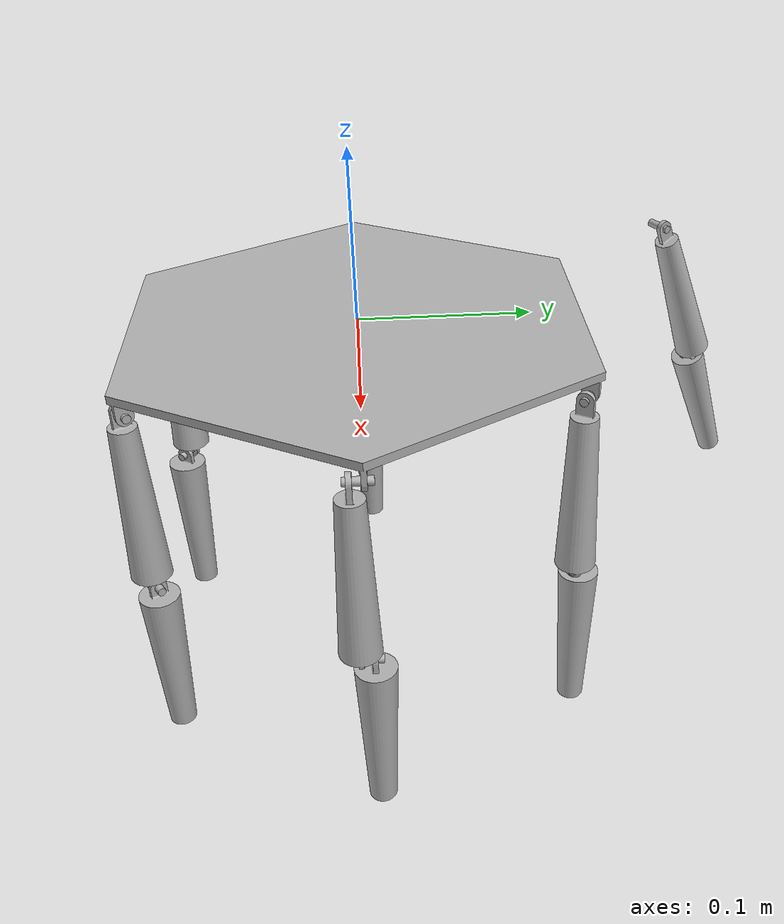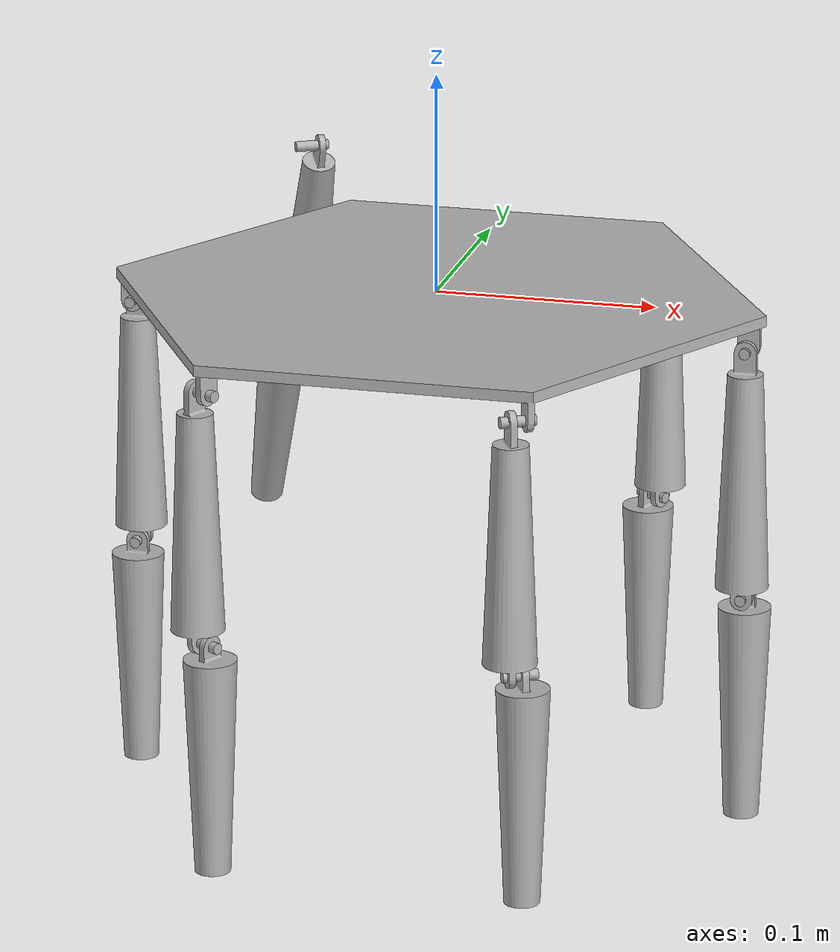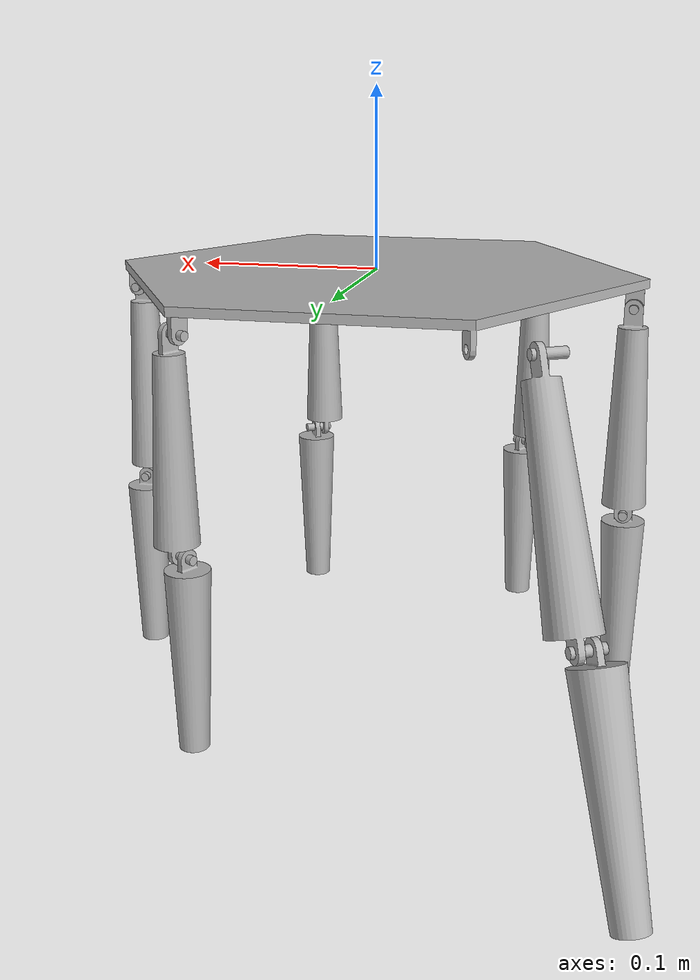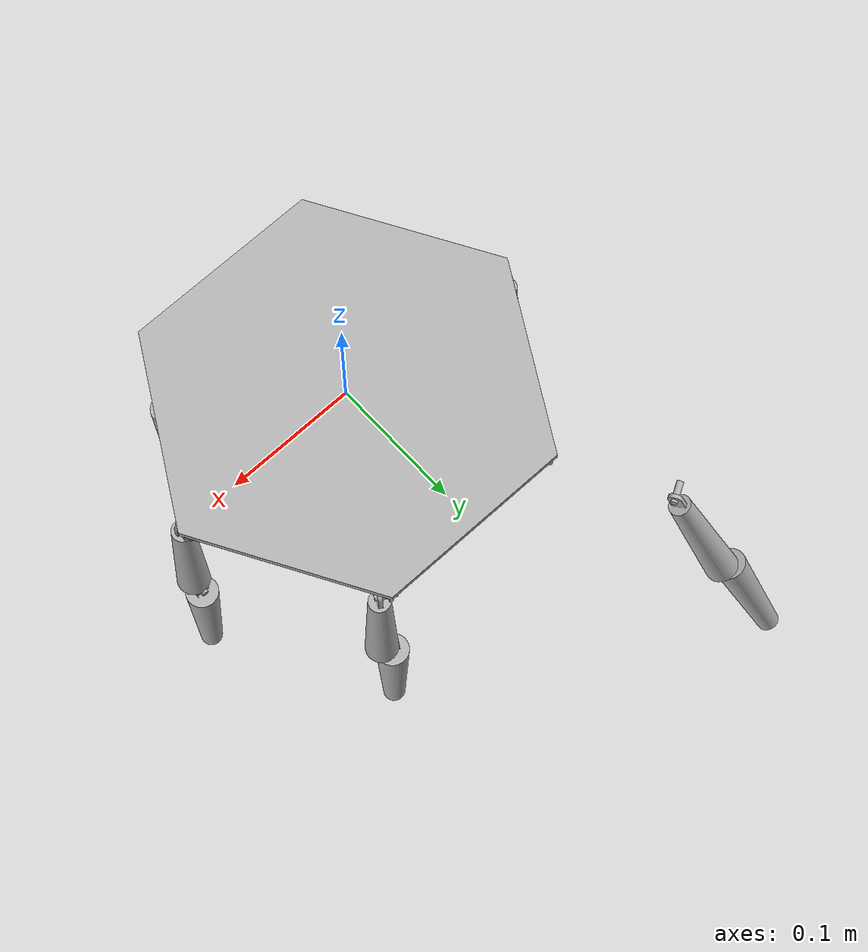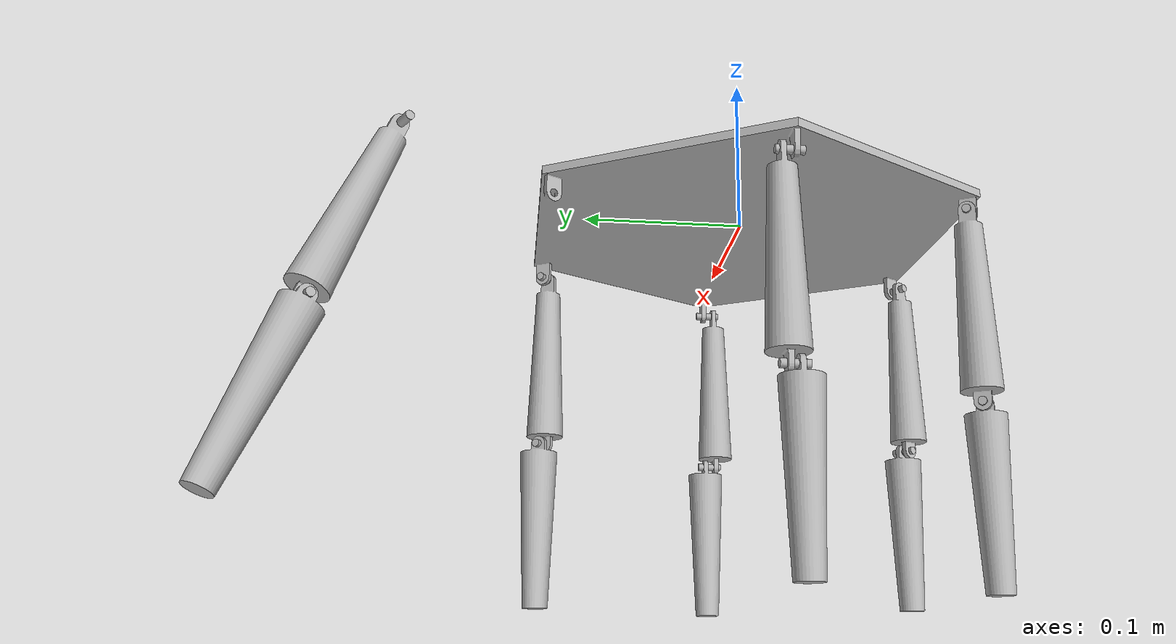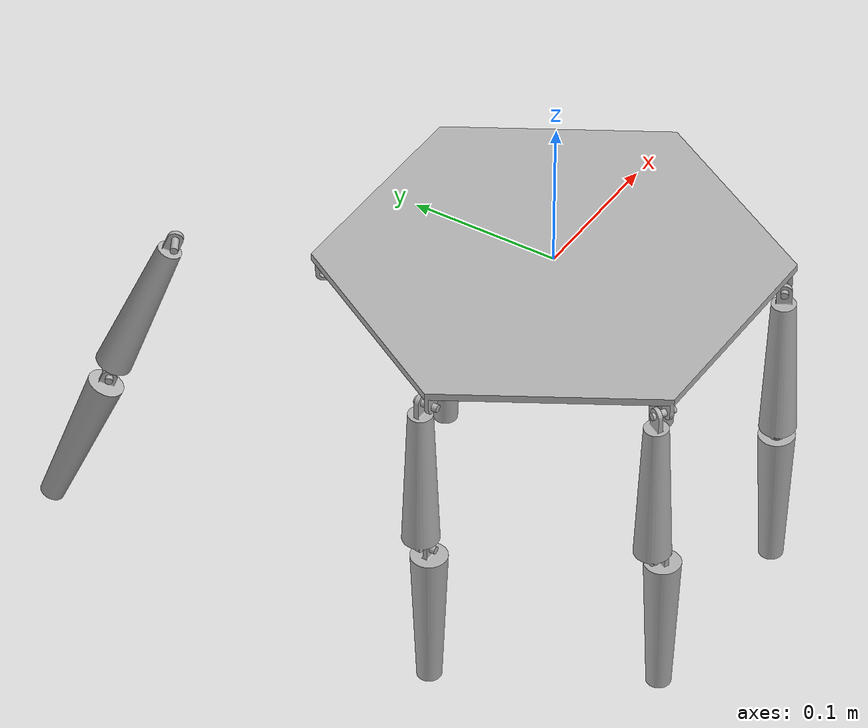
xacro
<?xml version="1.0" ?>
<robot name="hexapod1" xmlns:xacro="http://www.ros.org/wiki/xacro">

<xacro:include filename="$(find hexapod1_description)/urdf/materials.xacro" />
<xacro:include filename="$(find hexapod1_description)/urdf/hexapod1.trans" />
<xacro:include filename="$(find hexapod1_description)/urdf/hexapod1.gazebo" />
<link name="base_link">
  <inertial>
    <origin rpy="0 0 0" xyz="-3.0886578550290464e-17 -9.781969305119851e-17 0.23743381846397166"/>
    <mass value="2.3115326280936817"/>
    <inertia ixx="0.010935" ixy="-0.0" ixz="0.0" iyy="0.010935" iyz="-0.0" izz="0.021858"/>
  </inertial>
  <visual>
    <origin rpy="0 0 0" xyz="0 0 0"/>
    <geometry>
      <mesh filename="package://hexapod1_description/meshes/base_link.stl" scale="0.001 0.001 0.001"/>
    </geometry>
    <material name="silver"/>
  </visual>
  <collision>
    <origin rpy="0 0 0" xyz="0 0 0"/>
    <geometry>
      <mesh filename="package://hexapod1_description/meshes/base_link.stl" scale="0.001 0.001 0.001"/>
    </geometry>
  </collision>
</link>

<link name="lowerleg1_1">
  <inertial>
    <origin rpy="0 0 0" xyz="-0.0012985798550618766 0.0007502320287496311 -0.04902378284752565"/>
    <mass value="0.25197878483643155"/>
    <inertia ixx="0.000211" ixy="-0.0" ixz="0.0" iyy="0.000211" iyz="0.0" izz="1.3e-05"/>
  </inertial>
  <visual>
    <origin rpy="0 0 0" xyz="0.069944 0.124146 -0.109"/>
    <geometry>
      <mesh filename="package://hexapod1_description/meshes/lowerleg1_1.stl" scale="0.001 0.001 0.001"/>
    </geometry>
    <material name="silver"/>
  </visual>
  <collision>
    <origin rpy="0 0 0" xyz="0.069944 0.124146 -0.109"/>
    <geometry>
      <mesh filename="package://hexapod1_description/meshes/lowerleg1_1.stl" scale="0.001 0.001 0.001"/>
    </geometry>
  </collision>
</link>

<link name="kneepin1_1">
  <inertial>
    <origin rpy="0 0 0" xyz="3.4393371566021624e-07 2.3202897624086116e-07 -5.304813255335716e-09"/>
    <mass value="0.002466150233068093"/>
    <inertia ixx="0.0" ixy="0.0" ixz="0.0" iyy="0.0" iyz="-0.0" izz="0.0"/>
  </inertial>
  <visual>
    <origin rpy="0 0 0" xyz="0.073841 0.121896 -0.109"/>
    <geometry>
      <mesh filename="package://hexapod1_description/meshes/kneepin1_1.stl" scale="0.001 0.001 0.001"/>
    </geometry>
    <material name="silver"/>
  </visual>
  <collision>
    <origin rpy="0 0 0" xyz="0.073841 0.121896 -0.109"/>
    <geometry>
      <mesh filename="package://hexapod1_description/meshes/kneepin1_1.stl" scale="0.001 0.001 0.001"/>
    </geometry>
  </collision>
</link>

<link name="upperleg1_1">
  <inertial>
    <origin rpy="0 0 0" xyz="-0.0012987703854457772 0.0007502320252844585 -0.06626668072618791"/>
    <mass value="0.25482988143393986"/>
    <inertia ixx="0.000223" ixy="-0.0" ixz="0.0" iyy="0.000223" iyz="0.0" izz="1.3e-05"/>
  </inertial>
  <visual>
    <origin rpy="0 0 0" xyz="0.076439 0.120396 -0.225"/>
    <geometry>
      <mesh filename="package://hexapod1_description/meshes/upperleg1_1.stl" scale="0.001 0.001 0.001"/>
    </geometry>
    <material name="silver"/>
  </visual>
  <collision>
    <origin rpy="0 0 0" xyz="0.076439 0.120396 -0.225"/>
    <geometry>
      <mesh filename="package://hexapod1_description/meshes/upperleg1_1.stl" scale="0.001 0.001 0.001"/>
    </geometry>
  </collision>
</link>

<link name="thighpin1_1">
  <inertial>
    <origin rpy="0 0 0" xyz="3.4375490172433576e-07 2.317192613898733e-07 1.3877787807814457e-16"/>
    <mass value="0.0024661502330680933"/>
    <inertia ixx="0.0" ixy="0.0" ixz="-0.0" iyy="0.0" iyz="0.0" izz="0.0"/>
  </inertial>
  <visual>
    <origin rpy="0 0 0" xyz="0.073841 0.121896 -0.225"/>
    <geometry>
      <mesh filename="package://hexapod1_description/meshes/thighpin1_1.stl" scale="0.001 0.001 0.001"/>
    </geometry>
    <material name="silver"/>
  </visual>
  <collision>
    <origin rpy="0 0 0" xyz="0.073841 0.121896 -0.225"/>
    <geometry>
      <mesh filename="package://hexapod1_description/meshes/thighpin1_1.stl" scale="0.001 0.001 0.001"/>
    </geometry>
  </collision>
</link>

<link name="lowerleg1_2">
  <inertial>
    <origin rpy="0 0 0" xyz="-0.0012994582506147129 -0.0007497679712503286 -0.04902378284752565"/>
    <mass value="0.25197878483643155"/>
    <inertia ixx="0.000211" ixy="0.0" ixz="-0.0" iyy="0.000211" iyz="0.0" izz="1.3e-05"/>
  </inertial>
  <visual>
    <origin rpy="0 0 0" xyz="-0.071243 0.123396 -0.109"/>
    <geometry>
      <mesh filename="package://hexapod1_description/meshes/lowerleg1_2.stl" scale="0.001 0.001 0.001"/>
    </geometry>
    <material name="silver"/>
  </visual>
  <collision>
    <origin rpy="0 0 0" xyz="-0.071243 0.123396 -0.109"/>
    <geometry>
      <mesh filename="package://hexapod1_description/meshes/lowerleg1_2.stl" scale="0.001 0.001 0.001"/>
    </geometry>
  </collision>
</link>

<link name="kneepin1_2">
  <inertial>
    <origin rpy="0 0 0" xyz="-4.963564221444061e-07 2.3202897626861674e-07 -5.304813255335716e-09"/>
    <mass value="0.002466150233068093"/>
    <inertia ixx="0.0" ixy="-0.0" ixz="0.0" iyy="0.0" iyz="0.0" izz="0.0"/>
  </inertial>
  <visual>
    <origin rpy="0 0 0" xyz="-0.068645 0.124896 -0.109"/>
    <geometry>
      <mesh filename="package://hexapod1_description/meshes/kneepin1_2.stl" scale="0.001 0.001 0.001"/>
    </geometry>
    <material name="silver"/>
  </visual>
  <collision>
    <origin rpy="0 0 0" xyz="-0.068645 0.124896 -0.109"/>
    <geometry>
      <mesh filename="package://hexapod1_description/meshes/kneepin1_2.stl" scale="0.001 0.001 0.001"/>
    </geometry>
  </collision>
</link>

<link name="upperleg1_2">
  <inertial>
    <origin rpy="0 0 0" xyz="-0.001298610671320699 -0.0007497679747154595 -0.06626668072618791"/>
    <mass value="0.25482988143393986"/>
    <inertia ixx="0.000223" ixy="0.0" ixz="-0.0" iyy="0.000223" iyz="0.0" izz="1.3e-05"/>
  </inertial>
  <visual>
    <origin rpy="0 0 0" xyz="-0.066046 0.126396 -0.225"/>
    <geometry>
      <mesh filename="package://hexapod1_description/meshes/upperleg1_2.stl" scale="0.001 0.001 0.001"/>
    </geometry>
    <material name="silver"/>
  </visual>
  <collision>
    <origin rpy="0 0 0" xyz="-0.066046 0.126396 -0.225"/>
    <geometry>
      <mesh filename="package://hexapod1_description/meshes/upperleg1_2.stl" scale="0.001 0.001 0.001"/>
    </geometry>
  </collision>
</link>

<link name="thighpin1_2">
  <inertial>
    <origin rpy="0 0 0" xyz="4.6571671497019906e-07 2.3171926144538446e-07 1.3877787807814457e-16"/>
    <mass value="0.0024661502330680933"/>
    <inertia ixx="0.0" ixy="-0.0" ixz="0.0" iyy="0.0" iyz="0.0" izz="0.0"/>
  </inertial>
  <visual>
    <origin rpy="0 0 0" xyz="-0.067345 0.125646 -0.225"/>
    <geometry>
      <mesh filename="package://hexapod1_description/meshes/thighpin1_2.stl" scale="0.001 0.001 0.001"/>
    </geometry>
    <material name="silver"/>
  </visual>
  <collision>
    <origin rpy="0 0 0" xyz="-0.067345 0.125646 -0.225"/>
    <geometry>
      <mesh filename="package://hexapod1_description/meshes/thighpin1_2.stl" scale="0.001 0.001 0.001"/>
    </geometry>
  </collision>
</link>

<link name="lowerleg1_3">
  <inertial>
    <origin rpy="0 0 0" xyz="1.5971012387594463e-07 -0.001500000000000056 -0.04902378284752565"/>
    <mass value="0.25197878483643155"/>
    <inertia ixx="0.000211" ixy="0.0" ixz="-0.0" iyy="0.000211" iyz="-0.0" izz="1.3e-05"/>
  </inertial>
  <visual>
    <origin rpy="0 0 0" xyz="-0.142485 -0.0015 -0.109"/>
    <geometry>
      <mesh filename="package://hexapod1_description/meshes/lowerleg1_3.stl" scale="0.001 0.001 0.001"/>
    </geometry>
    <material name="silver"/>
  </visual>
  <collision>
    <origin rpy="0 0 0" xyz="-0.142485 -0.0015 -0.109"/>
    <geometry>
      <mesh filename="package://hexapod1_description/meshes/lowerleg1_3.stl" scale="0.001 0.001 0.001"/>
    </geometry>
  </collision>
</link>

<link name="kneepin1_5">
  <inertial>
    <origin rpy="0 0 0" xyz="4.963564222276728e-07 -2.320289764351502e-07 -5.304813255335716e-09"/>
    <mass value="0.002466150233068093"/>
    <inertia ixx="0.0" ixy="-0.0" ixz="0.0" iyy="0.0" iyz="0.0" izz="0.0"/>
  </inertial>
  <visual>
    <origin rpy="0 0 0" xyz="0.068645 -0.124896 -0.109"/>
    <geometry>
      <mesh filename="package://hexapod1_description/meshes/kneepin1_5.stl" scale="0.001 0.001 0.001"/>
    </geometry>
    <material name="silver"/>
  </visual>
  <collision>
    <origin rpy="0 0 0" xyz="0.068645 -0.124896 -0.109"/>
    <geometry>
      <mesh filename="package://hexapod1_description/meshes/kneepin1_5.stl" scale="0.001 0.001 0.001"/>
    </geometry>
  </collision>
</link>

<link name="upperleg1_5">
  <inertial>
    <origin rpy="0 0 0" xyz="0.0012986106713207268 0.0007497679747153208 -0.06626668072618791"/>
    <mass value="0.25482988143393986"/>
    <inertia ixx="0.000223" ixy="0.0" ixz="0.0" iyy="0.000223" iyz="-0.0" izz="1.3e-05"/>
  </inertial>
  <visual>
    <origin rpy="0 0 0" xyz="0.066046 -0.126396 -0.225"/>
    <geometry>
      <mesh filename="package://hexapod1_description/meshes/upperleg1_5.stl" scale="0.001 0.001 0.001"/>
    </geometry>
    <material name="silver"/>
  </visual>
  <collision>
    <origin rpy="0 0 0" xyz="0.066046 -0.126396 -0.225"/>
    <geometry>
      <mesh filename="package://hexapod1_description/meshes/upperleg1_5.stl" scale="0.001 0.001 0.001"/>
    </geometry>
  </collision>
</link>

<link name="thighpin1_5">
  <inertial>
    <origin rpy="0 0 0" xyz="4.961776082224034e-07 -2.317192616257957e-07 1.3877787807814457e-16"/>
    <mass value="0.0024661502330680933"/>
    <inertia ixx="0.0" ixy="-0.0" ixz="-0.0" iyy="0.0" iyz="0.0" izz="0.0"/>
  </inertial>
  <visual>
    <origin rpy="0 0 0" xyz="0.068645 -0.124896 -0.225"/>
    <geometry>
      <mesh filename="package://hexapod1_description/meshes/thighpin1_5.stl" scale="0.001 0.001 0.001"/>
    </geometry>
    <material name="silver"/>
  </visual>
  <collision>
    <origin rpy="0 0 0" xyz="0.068645 -0.124896 -0.225"/>
    <geometry>
      <mesh filename="package://hexapod1_description/meshes/thighpin1_5.stl" scale="0.001 0.001 0.001"/>
    </geometry>
  </collision>
</link>

<link name="lowerleg1_6">
  <inertial>
    <origin rpy="0 0 0" xyz="-1.5971012387594463e-07 0.001499999999999964 -0.049023782847525364"/>
    <mass value="0.25197878483643155"/>
    <inertia ixx="0.000211" ixy="0.0" ixz="0.0" iyy="0.000211" iyz="0.0" izz="1.3e-05"/>
  </inertial>
  <visual>
    <origin rpy="0 0 0" xyz="0.142485 0.0 -0.109"/>
    <geometry>
      <mesh filename="package://hexapod1_description/meshes/lowerleg1_6.stl" scale="0.001 0.001 0.001"/>
    </geometry>
    <material name="silver"/>
  </visual>
  <collision>
    <origin rpy="0 0 0" xyz="0.142485 0.0 -0.109"/>
    <geometry>
      <mesh filename="package://hexapod1_description/meshes/lowerleg1_6.stl" scale="0.001 0.001 0.001"/>
    </geometry>
  </collision>
</link>

<link name="kneepin1_6">
  <inertial>
    <origin rpy="0 0 0" xyz="-1.5970986219637773e-07 -4.683753385137379e-17 -5.30481297777996e-09"/>
    <mass value="0.002466150233068093"/>
    <inertia ixx="0.0" ixy="-0.0" ixz="0.0" iyy="0.0" iyz="0.0" izz="0.0"/>
  </inertial>
  <visual>
    <origin rpy="0 0 0" xyz="0.142485 -0.0045 -0.109"/>
    <geometry>
      <mesh filename="package://hexapod1_description/meshes/kneepin1_6.stl" scale="0.001 0.001 0.001"/>
    </geometry>
    <material name="silver"/>
  </visual>
  <collision>
    <origin rpy="0 0 0" xyz="0.142485 -0.0045 -0.109"/>
    <geometry>
      <mesh filename="package://hexapod1_description/meshes/kneepin1_6.stl" scale="0.001 0.001 0.001"/>
    </geometry>
  </collision>
</link>

<link name="upperleg1_6">
  <inertial>
    <origin rpy="0 0 0" xyz="-1.5971412506421423e-07 0.0014999999999999458 -0.06626668072618791"/>
    <mass value="0.25482988143393986"/>
    <inertia ixx="0.000222" ixy="0.0" ixz="0.0" iyy="0.000223" iyz="0.0" izz="1.3e-05"/>
  </inertial>
  <visual>
    <origin rpy="0 0 0" xyz="0.142485 -0.006 -0.225"/>
    <geometry>
      <mesh filename="package://hexapod1_description/meshes/upperleg1_6.stl" scale="0.001 0.001 0.001"/>
    </geometry>
    <material name="silver"/>
  </visual>
  <collision>
    <origin rpy="0 0 0" xyz="0.142485 -0.006 -0.225"/>
    <geometry>
      <mesh filename="package://hexapod1_description/meshes/upperleg1_6.stl" scale="0.001 0.001 0.001"/>
    </geometry>
  </collision>
</link>

<link name="thighpin1_6">
  <inertial>
    <origin rpy="0 0 0" xyz="-1.6006749009589427e-07 -6.635317295611287e-17 1.3877787807814457e-16"/>
    <mass value="0.0024661502330680933"/>
    <inertia ixx="0.0" ixy="0.0" ixz="-0.0" iyy="0.0" iyz="-0.0" izz="0.0"/>
  </inertial>
  <visual>
    <origin rpy="0 0 0" xyz="0.142485 -0.003 -0.225"/>
    <geometry>
      <mesh filename="package://hexapod1_description/meshes/thighpin1_6.stl" scale="0.001 0.001 0.001"/>
    </geometry>
    <material name="silver"/>
  </visual>
  <collision>
    <origin rpy="0 0 0" xyz="0.142485 -0.003 -0.225"/>
    <geometry>
      <mesh filename="package://hexapod1_description/meshes/thighpin1_6.stl" scale="0.001 0.001 0.001"/>
    </geometry>
  </collision>
</link>

<link name="lowerleg1_5">
  <inertial>
    <origin rpy="0 0 0" xyz="-0.0012985798550619182 -0.0007502320287498532 -0.04902378284752565"/>
    <mass value="0.25197878483643155"/>
    <inertia ixx="0.000211" ixy="0.0" ixz="0.0" iyy="0.000211" iyz="-0.0" izz="1.3e-05"/>
  </inertial>
  <visual>
    <origin rpy="0 0 0" xyz="0.069944 -0.124146 -0.109"/>
    <geometry>
      <mesh filename="package://hexapod1_description/meshes/lowerleg1_5.stl" scale="0.001 0.001 0.001"/>
    </geometry>
    <material name="silver"/>
  </visual>
  <collision>
    <origin rpy="0 0 0" xyz="0.069944 -0.124146 -0.109"/>
    <geometry>
      <mesh filename="package://hexapod1_description/meshes/lowerleg1_5.stl" scale="0.001 0.001 0.001"/>
    </geometry>
  </collision>
</link>

<link name="kneepin1_3">
  <inertial>
    <origin rpy="0 0 0" xyz="1.5970986219637773e-07 -4.683753385137379e-17 -5.304813255335716e-09"/>
    <mass value="0.002466150233068093"/>
    <inertia ixx="0.0" ixy="-0.0" ixz="0.0" iyy="0.0" iyz="0.0" izz="0.0"/>
  </inertial>
  <visual>
    <origin rpy="0 0 0" xyz="-0.142485 0.003 -0.109"/>
    <geometry>
      <mesh filename="package://hexapod1_description/meshes/kneepin1_3.stl" scale="0.001 0.001 0.001"/>
    </geometry>
    <material name="silver"/>
  </visual>
  <collision>
    <origin rpy="0 0 0" xyz="-0.142485 0.003 -0.109"/>
    <geometry>
      <mesh filename="package://hexapod1_description/meshes/kneepin1_3.stl" scale="0.001 0.001 0.001"/>
    </geometry>
  </collision>
</link>

<link name="upperleg1_3">
  <inertial>
    <origin rpy="0 0 0" xyz="1.5971412511972538e-07 -0.0015000000000000464 -0.06626668072618791"/>
    <mass value="0.25482988143393986"/>
    <inertia ixx="0.000222" ixy="-0.0" ixz="-0.0" iyy="0.000223" iyz="-0.0" izz="1.3e-05"/>
  </inertial>
  <visual>
    <origin rpy="0 0 0" xyz="-0.142485 0.006 -0.225"/>
    <geometry>
      <mesh filename="package://hexapod1_description/meshes/upperleg1_3.stl" scale="0.001 0.001 0.001"/>
    </geometry>
    <material name="silver"/>
  </visual>
  <collision>
    <origin rpy="0 0 0" xyz="-0.142485 0.006 -0.225"/>
    <geometry>
      <mesh filename="package://hexapod1_description/meshes/upperleg1_3.stl" scale="0.001 0.001 0.001"/>
    </geometry>
  </collision>
</link>

<link name="thighpin1_3">
  <inertial>
    <origin rpy="0 0 0" xyz="1.6006749012364985e-07 -1.8214596497756474e-17 1.3877787807814457e-16"/>
    <mass value="0.0024661502330680933"/>
    <inertia ixx="0.0" ixy="0.0" ixz="0.0" iyy="0.0" iyz="-0.0" izz="0.0"/>
  </inertial>
  <visual>
    <origin rpy="0 0 0" xyz="-0.142485 0.003 -0.225"/>
    <geometry>
      <mesh filename="package://hexapod1_description/meshes/thighpin1_3.stl" scale="0.001 0.001 0.001"/>
    </geometry>
    <material name="silver"/>
  </visual>
  <collision>
    <origin rpy="0 0 0" xyz="-0.142485 0.003 -0.225"/>
    <geometry>
      <mesh filename="package://hexapod1_description/meshes/thighpin1_3.stl" scale="0.001 0.001 0.001"/>
    </geometry>
  </collision>
</link>

<link name="lowerleg1_4">
  <inertial>
    <origin rpy="0 0 0" xyz="0.0012985798550619182 -0.0007502320287498532 -0.04902378284752565"/>
    <mass value="0.25197878483643155"/>
    <inertia ixx="0.000211" ixy="-0.0" ixz="-0.0" iyy="0.000211" iyz="-0.0" izz="1.3e-05"/>
  </inertial>
  <visual>
    <origin rpy="0 0 0" xyz="-0.069944 -0.124146 -0.109"/>
    <geometry>
      <mesh filename="package://hexapod1_description/meshes/lowerleg1_4.stl" scale="0.001 0.001 0.001"/>
    </geometry>
    <material name="silver"/>
  </visual>
  <collision>
    <origin rpy="0 0 0" xyz="-0.069944 -0.124146 -0.109"/>
    <geometry>
      <mesh filename="package://hexapod1_description/meshes/lowerleg1_4.stl" scale="0.001 0.001 0.001"/>
    </geometry>
  </collision>
</link>

<link name="kneepin1_4">
  <inertial>
    <origin rpy="0 0 0" xyz="-3.439337156047051e-07 -2.3202897646290577e-07 -5.304813255335716e-09"/>
    <mass value="0.002466150233068093"/>
    <inertia ixx="0.0" ixy="0.0" ixz="0.0" iyy="0.0" iyz="0.0" izz="0.0"/>
  </inertial>
  <visual>
    <origin rpy="0 0 0" xyz="-0.073841 -0.121896 -0.109"/>
    <geometry>
      <mesh filename="package://hexapod1_description/meshes/kneepin1_4.stl" scale="0.001 0.001 0.001"/>
    </geometry>
    <material name="silver"/>
  </visual>
  <collision>
    <origin rpy="0 0 0" xyz="-0.073841 -0.121896 -0.109"/>
    <geometry>
      <mesh filename="package://hexapod1_description/meshes/kneepin1_4.stl" scale="0.001 0.001 0.001"/>
    </geometry>
  </collision>
</link>

<link name="upperleg1_4">
  <inertial>
    <origin rpy="0 0 0" xyz="0.001298770385445791 -0.000750232025284639 -0.06626668072618791"/>
    <mass value="0.25482988143393986"/>
    <inertia ixx="0.000223" ixy="-0.0" ixz="-0.0" iyy="0.000223" iyz="-0.0" izz="1.3e-05"/>
  </inertial>
  <visual>
    <origin rpy="0 0 0" xyz="-0.076439 -0.120396 -0.225"/>
    <geometry>
      <mesh filename="package://hexapod1_description/meshes/upperleg1_4.stl" scale="0.001 0.001 0.001"/>
    </geometry>
    <material name="silver"/>
  </visual>
  <collision>
    <origin rpy="0 0 0" xyz="-0.076439 -0.120396 -0.225"/>
    <geometry>
      <mesh filename="package://hexapod1_description/meshes/upperleg1_4.stl" scale="0.001 0.001 0.001"/>
    </geometry>
  </collision>
</link>

<link name="thighpin1_4">
  <inertial>
    <origin rpy="0 0 0" xyz="-3.437549016965802e-07 -2.3171926157028455e-07 1.3877787807814457e-16"/>
    <mass value="0.0024661502330680933"/>
    <inertia ixx="0.0" ixy="0.0" ixz="0.0" iyy="0.0" iyz="0.0" izz="0.0"/>
  </inertial>
  <visual>
    <origin rpy="0 0 0" xyz="-0.073841 -0.121896 -0.225"/>
    <geometry>
      <mesh filename="package://hexapod1_description/meshes/thighpin1_4.stl" scale="0.001 0.001 0.001"/>
    </geometry>
    <material name="silver"/>
  </visual>
  <collision>
    <origin rpy="0 0 0" xyz="-0.073841 -0.121896 -0.225"/>
    <geometry>
      <mesh filename="package://hexapod1_description/meshes/thighpin1_4.stl" scale="0.001 0.001 0.001"/>
    </geometry>
  </collision>
</link>

<joint name="Rigid1" type="fixed">
  <origin rpy="0 0 0" xyz="0.003897 -0.00225 0.0"/>
  <parent link="kneepin1_1"/>
  <child link="lowerleg1_1"/>
</joint>

<joint name="Rev1" type="revolute">
  <origin rpy="0 0 0" xyz="0.002598 -0.0015 -0.116"/>
  <parent link="upperleg1_1"/>
  <child link="kneepin1_1"/>
  <axis xyz="0.866025 -0.5 -0.0"/>
  <limit effort="100" lower="0.0" upper="0.785398" velocity="100"/>
</joint>

<joint name="Rigid2" type="fixed">
  <origin rpy="0 0 0" xyz="-0.002598 0.0015 0.0"/>
  <parent link="thighpin1_1"/>
  <child link="upperleg1_1"/>
</joint>

<joint name="Rev2" type="revolute">
  <origin rpy="0 0 0" xyz="-0.073841 -0.121896 0.225"/>
  <parent link="base_link"/>
  <child link="thighpin1_1"/>
  <axis xyz="0.866025 -0.5 -0.0"/>
  <limit effort="100" lower="-0.785398" upper="0.0" velocity="100"/>
</joint>

<joint name="Rigid3" type="fixed">
  <origin rpy="0 0 0" xyz="0.002598 0.0015 0.0"/>
  <parent link="kneepin1_2"/>
  <child link="lowerleg1_2"/>
</joint>

<joint name="Rev3" type="revolute">
  <origin rpy="0 0 0" xyz="0.002599 0.0015 -0.116"/>
  <parent link="upperleg1_2"/>
  <child link="kneepin1_2"/>
  <axis xyz="0.866025 0.5 -0.0"/>
  <limit effort="100" lower="0.0" upper="0.785398" velocity="100"/>
</joint>

<joint name="Rigid4" type="fixed">
  <origin rpy="0 0 0" xyz="-0.001299 -0.00075 0.0"/>
  <parent link="thighpin1_2"/>
  <child link="upperleg1_2"/>
</joint>

<joint name="Rev4" type="revolute">
  <origin rpy="0 0 0" xyz="0.067345 -0.125646 0.225"/>
  <parent link="base_link"/>
  <child link="thighpin1_2"/>
  <axis xyz="0.866025 0.5 0.0"/>
  <limit effort="100" lower="-0.785398" upper="0.0" velocity="100"/>
</joint>

<joint name="Rigid9" type="fixed">
  <origin rpy="0 0 0" xyz="0.0 0.0045 0.0"/>
  <parent link="kneepin1_3"/>
  <child link="lowerleg1_3"/>
</joint>

<joint name="Rev5" type="revolute">
  <origin rpy="0 0 0" xyz="-0.002599 -0.0015 -0.116"/>
  <parent link="upperleg1_5"/>
  <child link="kneepin1_5"/>
  <axis xyz="-0.866025 -0.5 -0.0"/>
  <limit effort="100" lower="0.0" upper="0.785398" velocity="100"/>
</joint>

<joint name="Rigid6" type="fixed">
  <origin rpy="0 0 0" xyz="0.002599 0.0015 0.0"/>
  <parent link="thighpin1_5"/>
  <child link="upperleg1_5"/>
</joint>

<joint name="Rev6" type="revolute">
  <origin rpy="0 0 0" xyz="-0.068645 0.124896 0.225"/>
  <parent link="base_link"/>
  <child link="thighpin1_5"/>
  <axis xyz="-0.866025 -0.5 -0.0"/>
  <limit effort="100" lower="5.497787" upper="6.283185" velocity="100"/>
</joint>

<joint name="Rigid7" type="fixed">
  <origin rpy="0 0 0" xyz="0.0 -0.0045 0.0"/>
  <parent link="kneepin1_6"/>
  <child link="lowerleg1_6"/>
</joint>

<joint name="Rev7" type="revolute">
  <origin rpy="0 0 0" xyz="0.0 -0.0015 -0.116"/>
  <parent link="upperleg1_6"/>
  <child link="kneepin1_6"/>
  <axis xyz="-0.0 -1.0 -0.0"/>
  <limit effort="100" lower="0.0" upper="0.785398" velocity="100"/>
</joint>

<joint name="Rigid8" type="fixed">
  <origin rpy="0 0 0" xyz="0.0 0.003 0.0"/>
  <parent link="thighpin1_6"/>
  <child link="upperleg1_6"/>
</joint>

<joint name="Rev8" type="revolute">
  <origin rpy="0 0 0" xyz="-0.142485 0.003 0.225"/>
  <parent link="base_link"/>
  <child link="thighpin1_6"/>
  <axis xyz="-0.0 -1.0 -0.0"/>
  <limit effort="100" lower="-0.785398" upper="0.0" velocity="100"/>
</joint>

<joint name="Rigid5" type="fixed">
  <origin rpy="0 0 0" xyz="-0.001299 -0.00075 0.0"/>
  <parent link="kneepin1_5"/>
  <child link="lowerleg1_5"/>
</joint>

<joint name="Rev24" type="revolute">
  <origin rpy="0 0 0" xyz="0.0 0.003 -0.116"/>
  <parent link="upperleg1_3"/>
  <child link="kneepin1_3"/>
  <axis xyz="0.0 1.0 -0.0"/>
  <limit effort="100" lower="0.0" upper="0.785398" velocity="100"/>
</joint>

<joint name="Rigid25" type="fixed">
  <origin rpy="0 0 0" xyz="0.0 -0.003 0.0"/>
  <parent link="thighpin1_3"/>
  <child link="upperleg1_3"/>
</joint>

<joint name="Rev26" type="revolute">
  <origin rpy="0 0 0" xyz="0.142485 -0.003 0.225"/>
  <parent link="base_link"/>
  <child link="thighpin1_3"/>
  <axis xyz="-0.0 1.0 0.0"/>
  <limit effort="100" lower="-0.785398" upper="0.0" velocity="100"/>
</joint>

<joint name="Rigid27" type="fixed">
  <origin rpy="0 0 0" xyz="-0.003897 0.00225 0.0"/>
  <parent link="kneepin1_4"/>
  <child link="lowerleg1_4"/>
</joint>

<joint name="Rev28" type="revolute">
  <origin rpy="0 0 0" xyz="-0.002598 0.0015 -0.116"/>
  <parent link="upperleg1_4"/>
  <child link="kneepin1_4"/>
  <axis xyz="-0.866025 0.5 -0.0"/>
  <limit effort="100" lower="0.0" upper="0.785398" velocity="100"/>
</joint>

<joint name="Rigid29" type="fixed">
  <origin rpy="0 0 0" xyz="0.002598 -0.0015 0.0"/>
  <parent link="thighpin1_4"/>
  <child link="upperleg1_4"/>
</joint>

<joint name="Rev30" type="continuous">
  <origin rpy="0 0 0" xyz="0.073841 0.121896 0.225"/>
  <parent link="base_link"/>
  <child link="thighpin1_4"/>
  <axis xyz="-0.866025 0.5 0.0"/>
</joint>

</robot>

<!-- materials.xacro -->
<robot name="hexapod1" xmlns:xacro="http://www.ros.org/wiki/xacro" >

<material name="silver">
  <color rgba="0.700 0.700 0.700 1.000"/>
</material>

</robot>

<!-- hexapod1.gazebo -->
<robot name="hexapod1" xmlns:xacro="http://www.ros.org/wiki/xacro" >

<xacro:property name="body_color" value="Gazebo/Silver" />

<gazebo>
  <plugin filename="libgazebo_ros_control.so" name="control"/>
</gazebo>
<gazebo reference="base_link">
  <material>${body_color}</material>
  <mu1>0.2</mu1>
  <mu2>0.2</mu2>
  <selfCollide>true</selfCollide>
  <gravity>true</gravity>
</gazebo>

<gazebo reference="lowerleg1_1">
  <material>${body_color}</material>
  <mu1>0.2</mu1>
  <mu2>0.2</mu2>
  <selfCollide>true</selfCollide>
</gazebo>

<gazebo reference="kneepin1_1">
  <material>${body_color}</material>
  <mu1>0.2</mu1>
  <mu2>0.2</mu2>
  <selfCollide>true</selfCollide>
</gazebo>

<gazebo reference="upperleg1_1">
  <material>${body_color}</material>
  <mu1>0.2</mu1>
  <mu2>0.2</mu2>
  <selfCollide>true</selfCollide>
</gazebo>

<gazebo reference="thighpin1_1">
  <material>${body_color}</material>
  <mu1>0.2</mu1>
  <mu2>0.2</mu2>
  <selfCollide>true</selfCollide>
</gazebo>

<gazebo reference="lowerleg1_2">
  <material>${body_color}</material>
  <mu1>0.2</mu1>
  <mu2>0.2</mu2>
  <selfCollide>true</selfCollide>
</gazebo>

<gazebo reference="kneepin1_2">
  <material>${body_color}</material>
  <mu1>0.2</mu1>
  <mu2>0.2</mu2>
  <selfCollide>true</selfCollide>
</gazebo>

<gazebo reference="upperleg1_2">
  <material>${body_color}</material>
  <mu1>0.2</mu1>
  <mu2>0.2</mu2>
  <selfCollide>true</selfCollide>
</gazebo>

<gazebo reference="thighpin1_2">
  <material>${body_color}</material>
  <mu1>0.2</mu1>
  <mu2>0.2</mu2>
  <selfCollide>true</selfCollide>
</gazebo>

<gazebo reference="lowerleg1_3">
  <material>${body_color}</material>
  <mu1>0.2</mu1>
  <mu2>0.2</mu2>
  <selfCollide>true</selfCollide>
</gazebo>

<gazebo reference="kneepin1_5">
  <material>${body_color}</material>
  <mu1>0.2</mu1>
  <mu2>0.2</mu2>
  <selfCollide>true</selfCollide>
</gazebo>

<gazebo reference="upperleg1_5">
  <material>${body_color}</material>
  <mu1>0.2</mu1>
  <mu2>0.2</mu2>
  <selfCollide>true</selfCollide>
</gazebo>

<gazebo reference="thighpin1_5">
  <material>${body_color}</material>
  <mu1>0.2</mu1>
  <mu2>0.2</mu2>
  <selfCollide>true</selfCollide>
</gazebo>

<gazebo reference="lowerleg1_6">
  <material>${body_color}</material>
  <mu1>0.2</mu1>
  <mu2>0.2</mu2>
  <selfCollide>true</selfCollide>
</gazebo>

<gazebo reference="kneepin1_6">
  <material>${body_color}</material>
  <mu1>0.2</mu1>
  <mu2>0.2</mu2>
  <selfCollide>true</selfCollide>
</gazebo>

<gazebo reference="upperleg1_6">
  <material>${body_color}</material>
  <mu1>0.2</mu1>
  <mu2>0.2</mu2>
  <selfCollide>true</selfCollide>
</gazebo>

<gazebo reference="thighpin1_6">
  <material>${body_color}</material>
  <mu1>0.2</mu1>
  <mu2>0.2</mu2>
  <selfCollide>true</selfCollide>
</gazebo>

<gazebo reference="lowerleg1_5">
  <material>${body_color}</material>
  <mu1>0.2</mu1>
  <mu2>0.2</mu2>
  <selfCollide>true</selfCollide>
</gazebo>

<gazebo reference="kneepin1_3">
  <material>${body_color}</material>
  <mu1>0.2</mu1>
  <mu2>0.2</mu2>
  <selfCollide>true</selfCollide>
</gazebo>

<gazebo reference="upperleg1_3">
  <material>${body_color}</material>
  <mu1>0.2</mu1>
  <mu2>0.2</mu2>
  <selfCollide>true</selfCollide>
</gazebo>

<gazebo reference="thighpin1_3">
  <material>${body_color}</material>
  <mu1>0.2</mu1>
  <mu2>0.2</mu2>
  <selfCollide>true</selfCollide>
</gazebo>

<gazebo reference="lowerleg1_4">
  <material>${body_color}</material>
  <mu1>0.2</mu1>
  <mu2>0.2</mu2>
  <selfCollide>true</selfCollide>
</gazebo>

<gazebo reference="kneepin1_4">
  <material>${body_color}</material>
  <mu1>0.2</mu1>
  <mu2>0.2</mu2>
  <selfCollide>true</selfCollide>
</gazebo>

<gazebo reference="upperleg1_4">
  <material>${body_color}</material>
  <mu1>0.2</mu1>
  <mu2>0.2</mu2>
  <selfCollide>true</selfCollide>
</gazebo>

<gazebo reference="thighpin1_4">
  <material>${body_color}</material>
  <mu1>0.2</mu1>
  <mu2>0.2</mu2>
  <selfCollide>true</selfCollide>
</gazebo>

</robot>
